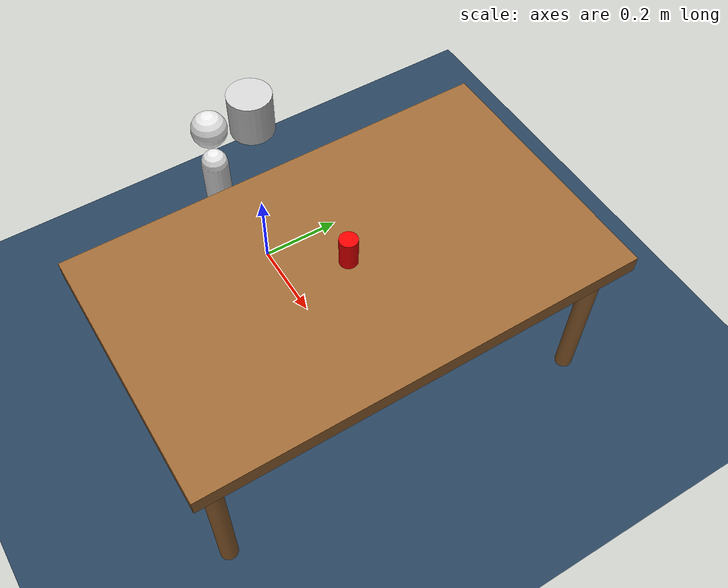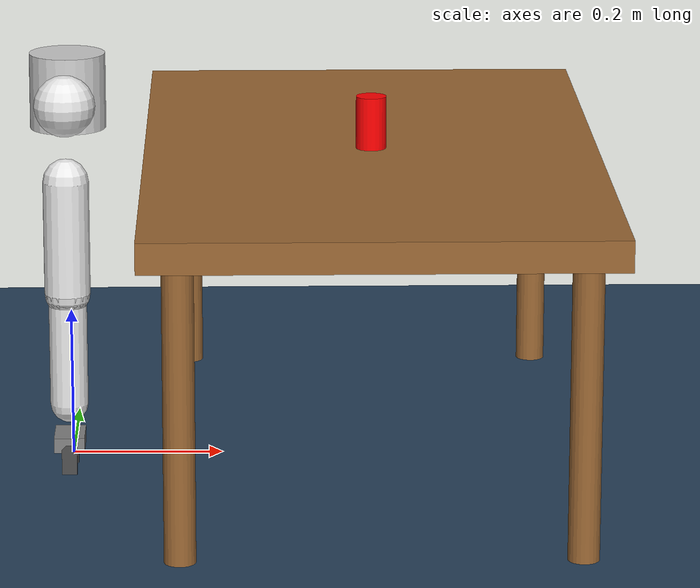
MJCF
<mujoco model="reachy_mini_scene">
    <compiler angle="degree" coordinate="local" inertiafromgeom="true"/>
    <option integrator="RK4" timestep="0.01"/>

    <asset>
        <texture type="skybox" builtin="gradient" rgb1="0.3 0.5 0.7" rgb2="0 0 0" width="512" height="512"/>
        <texture name="texplane" type="2d" builtin="checker" rgb1=".2 .3 .4" rgb2=".1 .2 .3" width="512" height="512" mark="cross" markrgb=".8 .8 .8"/>
        <material name="matplane" reflectance="0.3" texture="texplane" texrepeat="1 1" texuniform="true"/>
    </asset>

    <worldbody>
        <light directional="true" diffuse=".8 .8 .8" specular=".2 .2 .2" pos="0 0 5" dir="0 0 -1"/>
        <geom name="floor" pos="0 0 0" size="0 0 .25" type="plane" material="matplane" condim="3"/>

        <!-- Table -->
        <body name="table" pos="0.4 0 0.4">
            <geom name="table_top" type="box" size="0.3 0.5 0.02" rgba="0.6 0.4 0.2 1"/>
            <geom name="table_leg1" type="cylinder" size="0.02 0.2" pos="0.25 0.45 -0.2" rgba="0.6 0.4 0.2 1"/>
            <geom name="table_leg2" type="cylinder" size="0.02 0.2" pos="-0.25 0.45 -0.2" rgba="0.6 0.4 0.2 1"/>
            <geom name="table_leg3" type="cylinder" size="0.02 0.2" pos="0.25 -0.45 -0.2" rgba="0.6 0.4 0.2 1"/>
            <geom name="table_leg4" type="cylinder" size="0.02 0.2" pos="-0.25 -0.45 -0.2" rgba="0.6 0.4 0.2 1"/>
        </body>

        <!-- Target Object (Medicine Bottle) -->
        <body name="target" pos="0.4 0 0.45">
            <joint name="target_free" type="free"/>
            <geom name="bottle" type="cylinder" size="0.02 0.04" rgba="1 0 0 1" mass="0.1" condim="4" friction="1 0.5 0.01"/>
        </body>

        <!-- Reachy Mini Right Arm (Simplified Model) -->
        <body name="reachy_base" pos="0 0 0.5">
            <geom name="base_geom" type="cylinder" size="0.05 0.05" rgba="0.8 0.8 0.8 1"/>

            <body name="r_shoulder" pos="0 -0.1 0">
                <joint name="r_shoulder_pitch" type="hinge" axis="0 1 0" range="-180 180"/>
                <geom name="shoulder_pitch_geom" type="sphere" size="0.04" rgba="0.9 0.9 0.9 1"/>

                <body name="r_shoulder_roll_link" pos="0 0 0">
                    <joint name="r_shoulder_roll" type="hinge" axis="1 0 0" range="-180 180"/>
                    <!-- Added geom to provide mass/inertia -->
                    <geom name="shoulder_roll_geom" type="sphere" size="0.035" rgba="0.9 0.9 0.9 1"/>

                    <body name="r_arm_yaw_link" pos="0 0 -0.1">
                        <joint name="r_arm_yaw" type="hinge" axis="0 0 1" range="-180 180"/>
                        <geom name="upper_arm" type="capsule" fromto="0 0 0 0 0 -0.15" size="0.03" rgba="0.9 0.9 0.9 1"/>

                        <body name="r_elbow" pos="0 0 -0.15">
                            <joint name="r_elbow_pitch" type="hinge" axis="0 1 0" range="-180 180"/>
                            <geom name="elbow_geom" type="sphere" size="0.03" rgba="0.9 0.9 0.9 1"/>

                            <body name="r_forearm" pos="0 0 0">
                                <joint name="r_forearm_yaw" type="hinge" axis="0 0 1" range="-180 180"/>
                                <geom name="forearm_geom" type="capsule" fromto="0 0 0 0 0 -0.15" size="0.025" rgba="0.9 0.9 0.9 1"/>

                                <body name="r_wrist" pos="0 0 -0.15">
                                    <joint name="r_wrist_pitch" type="hinge" axis="0 1 0" range="-180 180"/>
                                    <!-- Added geom to provide mass/inertia -->
                                    <geom name="wrist_pitch_geom" type="sphere" size="0.02" rgba="0.9 0.9 0.9 1"/>

                                    <body name="r_wrist_roll_link">
                                        <joint name="r_wrist_roll" type="hinge" axis="1 0 0" range="-180 180"/>
                                        <!-- Added geom to provide mass/inertia -->
                                        <geom name="wrist_roll_geom" type="sphere" size="0.018" rgba="0.9 0.9 0.9 1"/>

                                        <!-- End Effector Site -->
                                        <site name="r_end_effector" pos="0 0 -0.05" size="0.01" rgba="0 1 0 1"/>

                                        <!-- Simple Gripper -->
                                        <body name="r_gripper" pos="0 0 -0.05">
                                            <geom name="palm" type="box" size="0.02 0.03 0.01" rgba="0.5 0.5 0.5 1"/>
                                            <body name="left_finger" pos="0 0.025 -0.02">
                                                <joint name="r_gripper_left" type="slide" axis="0 -1 0" range="0 0.02"/>
                                                <geom type="box" size="0.01 0.005 0.02" rgba="0.3 0.3 0.3 1" mass="0.01"/>
                                            </body>
                                            <body name="right_finger" pos="0 -0.025 -0.02">
                                                <joint name="r_gripper_right" type="slide" axis="0 1 0" range="0 0.02"/>
                                                <geom type="box" size="0.01 0.005 0.02" rgba="0.3 0.3 0.3 1" mass="0.01"/>
                                            </body>
                                        </body>
                                    </body>
                                </body>
                            </body>
                        </body>
                    </body>
                </body>
            </body>
        </body>
    </worldbody>

    <actuator>
        <position name="a_r_shoulder_pitch" joint="r_shoulder_pitch" kp="100"/>
        <position name="a_r_shoulder_roll" joint="r_shoulder_roll" kp="100"/>
        <position name="a_r_arm_yaw" joint="r_arm_yaw" kp="100"/>
        <position name="a_r_elbow_pitch" joint="r_elbow_pitch" kp="100"/>
        <position name="a_r_forearm_yaw" joint="r_forearm_yaw" kp="100"/>
        <position name="a_r_wrist_pitch" joint="r_wrist_pitch" kp="100"/>
        <position name="a_r_wrist_roll" joint="r_wrist_roll" kp="100"/>
        <position name="a_r_gripper_left" joint="r_gripper_left" kp="50"/>
        <position name="a_r_gripper_right" joint="r_gripper_right" kp="50"/>
    </actuator>
</mujoco>
